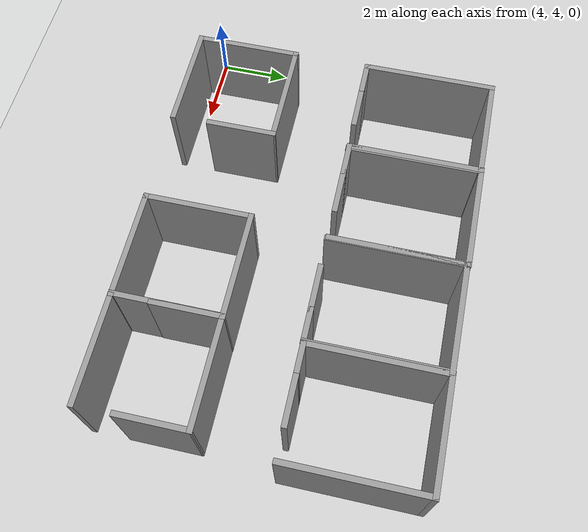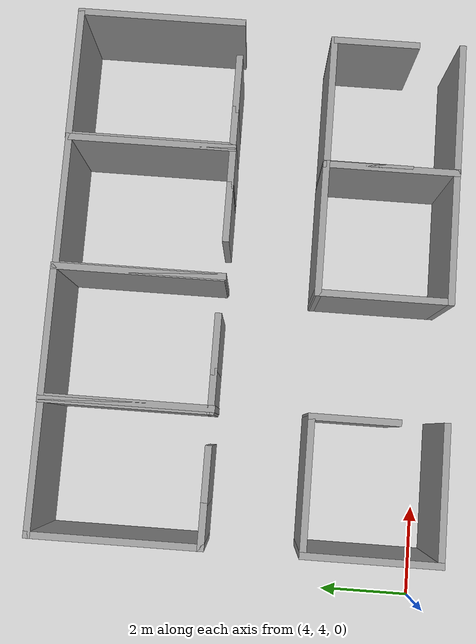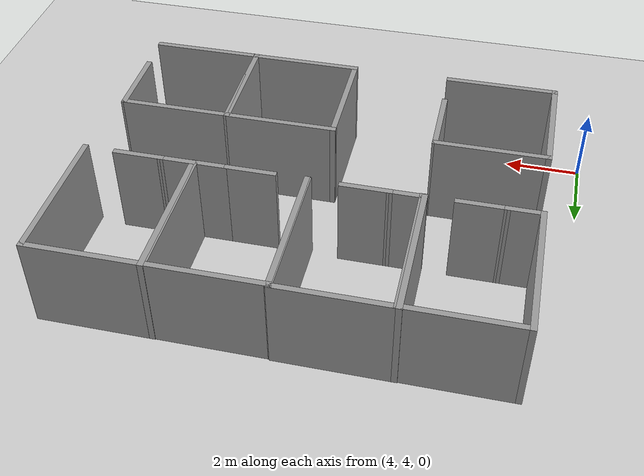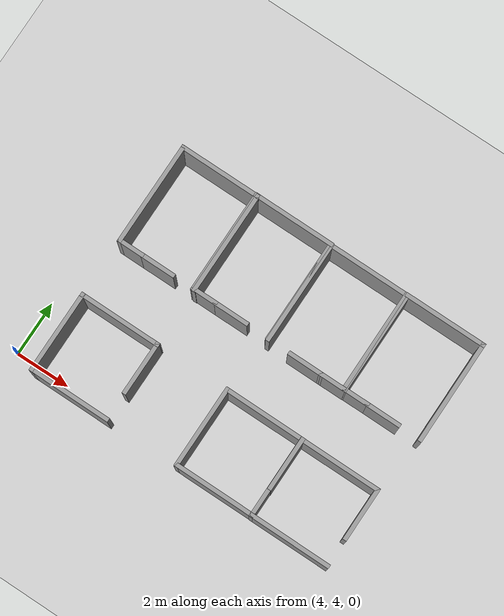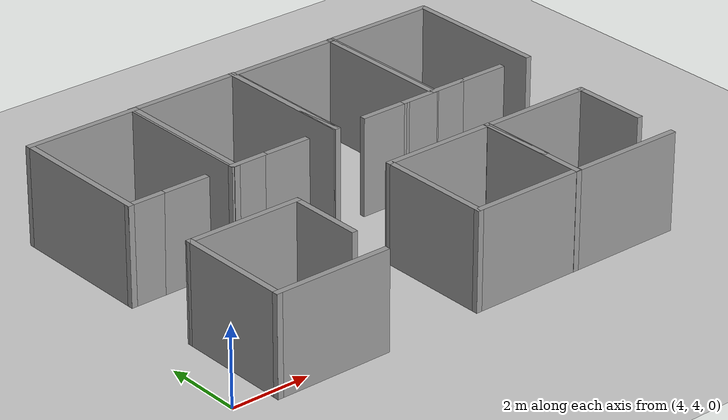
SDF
<sdf version="1.6">
 <world name="default">
  <model name="ground_plane">
   <static>1</static>
   <link name="link">
    <collision name="collision">
     <geometry><plane><normal>0 0 1</normal><size>100 100</size></plane></geometry>
     <surface><friction><ode><mu>100</mu><mu2>50</mu2></ode></friction></surface>
    </collision>
    <visual name="visual">
     <cast_shadows>0</cast_shadows>
     <geometry><plane><normal>0 0 1</normal><size>100 100</size></plane></geometry>
     <material>
      <script><uri>file://media/materials/scripts/gazebo.material</uri><name>Gazebo/Grey</name></script>
     </material>
    </visual>
   </link>
  </model>
  <model name="313-325_3">
   <link name="Wall_16">
    <pose>-1.44915 7.1e-05 0 0 0 -1.57088</pose>
    <visual name="Wall_16_Visual">
     <pose>0 0 1.25 0 -0 0</pose>
     <geometry><box><size>3.81 0.15 2.5</size></box></geometry>
     <material>
      <script><uri>file://media/materials/scripts/gazebo.material</uri><name>Gazebo/Grey</name></script>
      <ambient>1 1 1 1</ambient>
      <shader type="pixel"/>
     </material>
     <meta><layer>0</layer></meta>
    </visual>
    <collision name="Wall_16_Collision">
     <pose>0 0 1.25 0 -0 0</pose>
     <geometry><box><size>3.81 0.15 2.5</size></box></geometry>
     <surface>
      <friction>
       <ode><mu>1</mu><mu2>1</mu2><fdir1>0 0 0</fdir1><slip1>0</slip1><slip2>0</slip2></ode>
       <torsional>
        <coefficient>1</coefficient>
        <patch_radius>0</patch_radius>
        <surface_radius>0</surface_radius>
        <use_patch_radius>1</use_patch_radius>
        <ode><slip>0</slip></ode>
       </torsional>
      </friction>
      <bounce><restitution_coefficient>0</restitution_coefficient><threshold>1e+06</threshold></bounce>
      <contact>
       <collide_without_contact>0</collide_without_contact>
       <collide_without_contact_bitmask>1</collide_without_contact_bitmask>
       <collide_bitmask>1</collide_bitmask>
       <ode>
        <soft_cfm>0</soft_cfm>
        <soft_erp>0.2</soft_erp>
        <kp>1e+13</kp>
        <kd>1</kd>
        <max_vel>0.01</max_vel>
        <min_depth>0</min_depth>
       </ode>
       <bullet>
        <split_impulse>1</split_impulse>
        <split_impulse_penetration_threshold>-0.01</split_impulse_penetration_threshold>
        <soft_cfm>0</soft_cfm>
        <soft_erp>0.2</soft_erp>
        <kp>1e+13</kp>
        <kd>1</kd>
       </bullet>
      </contact>
     </surface>
    </collision>
   </link>
   <link name="Wall_18">
    <pose>1.449 -6.1e-05 0 0 -0 1.5708</pose>
    <visual name="Wall_18_Visual">
     <pose>0 0 1.25 0 -0 0</pose>
     <geometry><box><size>3.80974 0.15 2.5</size></box></geometry>
     <material>
      <script><uri>file://media/materials/scripts/gazebo.material</uri><name>Gazebo/Grey</name></script>
      <ambient>1 1 1 1</ambient>
      <shader type="pixel"/>
     </material>
     <meta><layer>0</layer></meta>
    </visual>
    <collision name="Wall_18_Collision">
     <pose>0 0 1.25 0 -0 0</pose>
     <geometry><box><size>3.80974 0.15 2.5</size></box></geometry>
     <surface>
      <friction>
       <ode><mu>1</mu><mu2>1</mu2><fdir1>0 0 0</fdir1><slip1>0</slip1><slip2>0</slip2></ode>
       <torsional>
        <coefficient>1</coefficient>
        <patch_radius>0</patch_radius>
        <surface_radius>0</surface_radius>
        <use_patch_radius>1</use_patch_radius>
        <ode><slip>0</slip></ode>
       </torsional>
      </friction>
      <bounce><restitution_coefficient>0</restitution_coefficient><threshold>1e+06</threshold></bounce>
      <contact>
       <collide_without_contact>0</collide_without_contact>
       <collide_without_contact_bitmask>1</collide_without_contact_bitmask>
       <collide_bitmask>1</collide_bitmask>
       <ode>
        <soft_cfm>0</soft_cfm>
        <soft_erp>0.2</soft_erp>
        <kp>1e+13</kp>
        <kd>1</kd>
        <max_vel>0.01</max_vel>
        <min_depth>0</min_depth>
       </ode>
       <bullet>
        <split_impulse>1</split_impulse>
        <split_impulse_penetration_threshold>-0.01</split_impulse_penetration_threshold>
        <soft_cfm>0</soft_cfm>
        <soft_erp>0.2</soft_erp>
        <kp>1e+13</kp>
        <kd>1</kd>
       </bullet>
      </contact>
     </surface>
    </collision>
   </link>
   <link name="Wall_19">
    <pose>1e-06 1.82994 0 0 -0 3.14159</pose>
    <visual name="Wall_19_Visual">
     <pose>0 0 1.25 0 -0 0</pose>
     <geometry><box><size>3.04862 0.15 2.5</size></box></geometry>
     <material>
      <script><uri>file://media/materials/scripts/gazebo.material</uri><name>Gazebo/Grey</name></script>
      <ambient>1 1 1 1</ambient>
      <shader type="pixel"/>
     </material>
     <meta><layer>0</layer></meta>
    </visual>
    <collision name="Wall_19_Collision">
     <pose>0 0 1.25 0 -0 0</pose>
     <geometry><box><size>3.04862 0.15 2.5</size></box></geometry>
     <surface>
      <friction>
       <ode><mu>1</mu><mu2>1</mu2><fdir1>0 0 0</fdir1><slip1>0</slip1><slip2>0</slip2></ode>
       <torsional>
        <coefficient>1</coefficient>
        <patch_radius>0</patch_radius>
        <surface_radius>0</surface_radius>
        <use_patch_radius>1</use_patch_radius>
        <ode><slip>0</slip></ode>
       </torsional>
      </friction>
      <bounce><restitution_coefficient>0</restitution_coefficient><threshold>1e+06</threshold></bounce>
      <contact>
       <collide_without_contact>0</collide_without_contact>
       <collide_without_contact_bitmask>1</collide_without_contact_bitmask>
       <collide_bitmask>1</collide_bitmask>
       <ode>
        <soft_cfm>0</soft_cfm>
        <soft_erp>0.2</soft_erp>
        <kp>1e+13</kp>
        <kd>1</kd>
        <max_vel>0.01</max_vel>
        <min_depth>0</min_depth>
       </ode>
       <bullet>
        <split_impulse>1</split_impulse>
        <split_impulse_penetration_threshold>-0.01</split_impulse_penetration_threshold>
        <soft_cfm>0</soft_cfm>
        <soft_erp>0.2</soft_erp>
        <kp>1e+13</kp>
        <kd>1</kd>
       </bullet>
      </contact>
     </surface>
    </collision>
   </link>
   <link name="Wall_21">
    <pose>-1.02431 -1.8298 0 0 -0 0</pose>
    <visual name="Wall_21_Visual">
     <pose>0 0 1.25 0 -0 0</pose>
     <geometry><box><size>1 0.15 2.5</size></box></geometry>
     <material>
      <script><uri>file://media/materials/scripts/gazebo.material</uri><name>Gazebo/Grey</name></script>
      <ambient>1 1 1 1</ambient>
      <shader type="pixel"/>
     </material>
     <meta><layer>0</layer></meta>
    </visual>
    <collision name="Wall_21_Collision">
     <pose>0 0 1.25 0 -0 0</pose>
     <geometry><box><size>1 0.15 2.5</size></box></geometry>
     <surface>
      <friction>
       <ode><mu>1</mu><mu2>1</mu2><fdir1>0 0 0</fdir1><slip1>0</slip1><slip2>0</slip2></ode>
       <torsional>
        <coefficient>1</coefficient>
        <patch_radius>0</patch_radius>
        <surface_radius>0</surface_radius>
        <use_patch_radius>1</use_patch_radius>
        <ode><slip>0</slip></ode>
       </torsional>
      </friction>
      <bounce><restitution_coefficient>0</restitution_coefficient><threshold>1e+06</threshold></bounce>
      <contact>
       <collide_without_contact>0</collide_without_contact>
       <collide_without_contact_bitmask>1</collide_without_contact_bitmask>
       <collide_bitmask>1</collide_bitmask>
       <ode>
        <soft_cfm>0</soft_cfm>
        <soft_erp>0.2</soft_erp>
        <kp>1e+13</kp>
        <kd>1</kd>
        <max_vel>0.01</max_vel>
        <min_depth>0</min_depth>
       </ode>
       <bullet>
        <split_impulse>1</split_impulse>
        <split_impulse_penetration_threshold>-0.01</split_impulse_penetration_threshold>
        <soft_cfm>0</soft_cfm>
        <soft_erp>0.2</soft_erp>
        <kp>1e+13</kp>
        <kd>1</kd>
       </bullet>
      </contact>
     </surface>
    </collision>
   </link>
   <link name="Wall_22">
    <pose>-0.000152 -1.82993 0 0 0 -0.00022</pose>
    <visual name="Wall_22_Visual">
     <pose>0 0 1.25 0 -0 0</pose>
     <geometry><box><size>1.34831 0.15 2.5</size></box></geometry>
     <material>
      <script><uri>file://media/materials/scripts/gazebo.material</uri><name>Gazebo/Grey</name></script>
      <ambient>1 1 1 1</ambient>
      <shader type="pixel"/>
     </material>
     <meta><layer>0</layer></meta>
    </visual>
    <collision name="Wall_22_Collision">
     <pose>0 0 1.25 0 -0 0</pose>
     <geometry><box><size>1.34831 0.15 2.5</size></box></geometry>
     <surface>
      <friction>
       <ode><mu>1</mu><mu2>1</mu2><fdir1>0 0 0</fdir1><slip1>0</slip1><slip2>0</slip2></ode>
       <torsional>
        <coefficient>1</coefficient>
        <patch_radius>0</patch_radius>
        <surface_radius>0</surface_radius>
        <use_patch_radius>1</use_patch_radius>
        <ode><slip>0</slip></ode>
       </torsional>
      </friction>
      <bounce><restitution_coefficient>0</restitution_coefficient><threshold>1e+06</threshold></bounce>
      <contact>
       <collide_without_contact>0</collide_without_contact>
       <collide_without_contact_bitmask>1</collide_without_contact_bitmask>
       <collide_bitmask>1</collide_bitmask>
       <ode>
        <soft_cfm>0</soft_cfm>
        <soft_erp>0.2</soft_erp>
        <kp>1e+13</kp>
        <kd>1</kd>
        <max_vel>0.01</max_vel>
        <min_depth>0</min_depth>
       </ode>
       <bullet>
        <split_impulse>1</split_impulse>
        <split_impulse_penetration_threshold>-0.01</split_impulse_penetration_threshold>
        <soft_cfm>0</soft_cfm>
        <soft_erp>0.2</soft_erp>
        <kp>1e+13</kp>
        <kd>1</kd>
       </bullet>
      </contact>
     </surface>
    </collision>
   </link>
   <static>1</static>
   <pose>15.1738 10.5914 0 0 -0 0</pose>
  </model>
  <model name="313-325_4">
   <link name="Wall_16">
    <pose>-1.44915 7.1e-05 0 0 0 -1.57088</pose>
    <visual name="Wall_16_Visual">
     <pose>0 0 1.25 0 -0 0</pose>
     <geometry><box><size>3.81 0.15 2.5</size></box></geometry>
     <material>
      <script><uri>file://media/materials/scripts/gazebo.material</uri><name>Gazebo/Grey</name></script>
      <ambient>1 1 1 1</ambient>
      <shader type="pixel"/>
     </material>
     <meta><layer>0</layer></meta>
    </visual>
    <collision name="Wall_16_Collision">
     <pose>0 0 1.25 0 -0 0</pose>
     <geometry><box><size>3.81 0.15 2.5</size></box></geometry>
     <surface>
      <friction>
       <ode><mu>1</mu><mu2>1</mu2><fdir1>0 0 0</fdir1><slip1>0</slip1><slip2>0</slip2></ode>
       <torsional>
        <coefficient>1</coefficient>
        <patch_radius>0</patch_radius>
        <surface_radius>0</surface_radius>
        <use_patch_radius>1</use_patch_radius>
        <ode><slip>0</slip></ode>
       </torsional>
      </friction>
      <bounce><restitution_coefficient>0</restitution_coefficient><threshold>1e+06</threshold></bounce>
      <contact>
       <collide_without_contact>0</collide_without_contact>
       <collide_without_contact_bitmask>1</collide_without_contact_bitmask>
       <collide_bitmask>1</collide_bitmask>
       <ode>
        <soft_cfm>0</soft_cfm>
        <soft_erp>0.2</soft_erp>
        <kp>1e+13</kp>
        <kd>1</kd>
        <max_vel>0.01</max_vel>
        <min_depth>0</min_depth>
       </ode>
       <bullet>
        <split_impulse>1</split_impulse>
        <split_impulse_penetration_threshold>-0.01</split_impulse_penetration_threshold>
        <soft_cfm>0</soft_cfm>
        <soft_erp>0.2</soft_erp>
        <kp>1e+13</kp>
        <kd>1</kd>
       </bullet>
      </contact>
     </surface>
    </collision>
   </link>
   <link name="Wall_18">
    <pose>1.449 -6.1e-05 0 0 -0 1.5708</pose>
    <visual name="Wall_18_Visual">
     <pose>0 0 1.25 0 -0 0</pose>
     <geometry><box><size>3.80974 0.15 2.5</size></box></geometry>
     <material>
      <script><uri>file://media/materials/scripts/gazebo.material</uri><name>Gazebo/Grey</name></script>
      <ambient>1 1 1 1</ambient>
      <shader type="pixel"/>
     </material>
     <meta><layer>0</layer></meta>
    </visual>
    <collision name="Wall_18_Collision">
     <pose>0 0 1.25 0 -0 0</pose>
     <geometry><box><size>3.80974 0.15 2.5</size></box></geometry>
     <surface>
      <friction>
       <ode><mu>1</mu><mu2>1</mu2><fdir1>0 0 0</fdir1><slip1>0</slip1><slip2>0</slip2></ode>
       <torsional>
        <coefficient>1</coefficient>
        <patch_radius>0</patch_radius>
        <surface_radius>0</surface_radius>
        <use_patch_radius>1</use_patch_radius>
        <ode><slip>0</slip></ode>
       </torsional>
      </friction>
      <bounce><restitution_coefficient>0</restitution_coefficient><threshold>1e+06</threshold></bounce>
      <contact>
       <collide_without_contact>0</collide_without_contact>
       <collide_without_contact_bitmask>1</collide_without_contact_bitmask>
       <collide_bitmask>1</collide_bitmask>
       <ode>
        <soft_cfm>0</soft_cfm>
        <soft_erp>0.2</soft_erp>
        <kp>1e+13</kp>
        <kd>1</kd>
        <max_vel>0.01</max_vel>
        <min_depth>0</min_depth>
       </ode>
       <bullet>
        <split_impulse>1</split_impulse>
        <split_impulse_penetration_threshold>-0.01</split_impulse_penetration_threshold>
        <soft_cfm>0</soft_cfm>
        <soft_erp>0.2</soft_erp>
        <kp>1e+13</kp>
        <kd>1</kd>
       </bullet>
      </contact>
     </surface>
    </collision>
   </link>
   <link name="Wall_19">
    <pose>1e-06 1.82994 0 0 -0 3.14159</pose>
    <visual name="Wall_19_Visual">
     <pose>0 0 1.25 0 -0 0</pose>
     <geometry><box><size>3.04862 0.15 2.5</size></box></geometry>
     <material>
      <script><uri>file://media/materials/scripts/gazebo.material</uri><name>Gazebo/Grey</name></script>
      <ambient>1 1 1 1</ambient>
      <shader type="pixel"/>
     </material>
     <meta><layer>0</layer></meta>
    </visual>
    <collision name="Wall_19_Collision">
     <pose>0 0 1.25 0 -0 0</pose>
     <geometry><box><size>3.04862 0.15 2.5</size></box></geometry>
     <surface>
      <friction>
       <ode><mu>1</mu><mu2>1</mu2><fdir1>0 0 0</fdir1><slip1>0</slip1><slip2>0</slip2></ode>
       <torsional>
        <coefficient>1</coefficient>
        <patch_radius>0</patch_radius>
        <surface_radius>0</surface_radius>
        <use_patch_radius>1</use_patch_radius>
        <ode><slip>0</slip></ode>
       </torsional>
      </friction>
      <bounce><restitution_coefficient>0</restitution_coefficient><threshold>1e+06</threshold></bounce>
      <contact>
       <collide_without_contact>0</collide_without_contact>
       <collide_without_contact_bitmask>1</collide_without_contact_bitmask>
       <collide_bitmask>1</collide_bitmask>
       <ode>
        <soft_cfm>0</soft_cfm>
        <soft_erp>0.2</soft_erp>
        <kp>1e+13</kp>
        <kd>1</kd>
        <max_vel>0.01</max_vel>
        <min_depth>0</min_depth>
       </ode>
       <bullet>
        <split_impulse>1</split_impulse>
        <split_impulse_penetration_threshold>-0.01</split_impulse_penetration_threshold>
        <soft_cfm>0</soft_cfm>
        <soft_erp>0.2</soft_erp>
        <kp>1e+13</kp>
        <kd>1</kd>
       </bullet>
      </contact>
     </surface>
    </collision>
   </link>
   <link name="Wall_22">
    <pose>-0.000152 -1.82993 0 0 0 -0.00022</pose>
    <visual name="Wall_22_Visual">
     <pose>0 0 1.25 0 -0 0</pose>
     <geometry><box><size>1.34831 0.15 2.5</size></box></geometry>
     <material>
      <script><uri>file://media/materials/scripts/gazebo.material</uri><name>Gazebo/Grey</name></script>
      <ambient>1 1 1 1</ambient>
      <shader type="pixel"/>
     </material>
     <meta><layer>0</layer></meta>
    </visual>
    <collision name="Wall_22_Collision">
     <pose>0 0 1.25 0 -0 0</pose>
     <geometry><box><size>1.34831 0.15 2.5</size></box></geometry>
     <surface>
      <friction>
       <ode><mu>1</mu><mu2>1</mu2><fdir1>0 0 0</fdir1><slip1>0</slip1><slip2>0</slip2></ode>
       <torsional>
        <coefficient>1</coefficient>
        <patch_radius>0</patch_radius>
        <surface_radius>0</surface_radius>
        <use_patch_radius>1</use_patch_radius>
        <ode><slip>0</slip></ode>
       </torsional>
      </friction>
      <bounce><restitution_coefficient>0</restitution_coefficient><threshold>1e+06</threshold></bounce>
      <contact>
       <collide_without_contact>0</collide_without_contact>
       <collide_without_contact_bitmask>1</collide_without_contact_bitmask>
       <collide_bitmask>1</collide_bitmask>
       <ode>
        <soft_cfm>0</soft_cfm>
        <soft_erp>0.2</soft_erp>
        <kp>1e+13</kp>
        <kd>1</kd>
        <max_vel>0.01</max_vel>
        <min_depth>0</min_depth>
       </ode>
       <bullet>
        <split_impulse>1</split_impulse>
        <split_impulse_penetration_threshold>-0.01</split_impulse_penetration_threshold>
        <soft_cfm>0</soft_cfm>
        <soft_erp>0.2</soft_erp>
        <kp>1e+13</kp>
        <kd>1</kd>
       </bullet>
      </contact>
     </surface>
    </collision>
   </link>
   <link name="Wall_23">
    <pose>1.024 -1.83006 0 0 -0 0</pose>
    <visual name="Wall_23_Visual">
     <pose>0 0 1.25 0 -0 0</pose>
     <geometry><box><size>1 0.15 2.5</size></box></geometry>
     <material>
      <script><uri>file://media/materials/scripts/gazebo.material</uri><name>Gazebo/Grey</name></script>
      <ambient>1 1 1 1</ambient>
      <shader type="pixel"/>
     </material>
     <meta><layer>0</layer></meta>
    </visual>
    <collision name="Wall_23_Collision">
     <pose>0 0 1.25 0 -0 0</pose>
     <geometry><box><size>1 0.15 2.5</size></box></geometry>
     <surface>
      <friction>
       <ode><mu>1</mu><mu2>1</mu2><fdir1>0 0 0</fdir1><slip1>0</slip1><slip2>0</slip2></ode>
       <torsional>
        <coefficient>1</coefficient>
        <patch_radius>0</patch_radius>
        <surface_radius>0</surface_radius>
        <use_patch_radius>1</use_patch_radius>
        <ode><slip>0</slip></ode>
       </torsional>
      </friction>
      <bounce><restitution_coefficient>0</restitution_coefficient><threshold>1e+06</threshold></bounce>
      <contact>
       <collide_without_contact>0</collide_without_contact>
       <collide_without_contact_bitmask>1</collide_without_contact_bitmask>
       <collide_bitmask>1</collide_bitmask>
       <ode>
        <soft_cfm>0</soft_cfm>
        <soft_erp>0.2</soft_erp>
        <kp>1e+13</kp>
        <kd>1</kd>
        <max_vel>0.01</max_vel>
        <min_depth>0</min_depth>
       </ode>
       <bullet>
        <split_impulse>1</split_impulse>
        <split_impulse_penetration_threshold>-0.01</split_impulse_penetration_threshold>
        <soft_cfm>0</soft_cfm>
        <soft_erp>0.2</soft_erp>
        <kp>1e+13</kp>
        <kd>1</kd>
       </bullet>
      </contact>
     </surface>
    </collision>
   </link>
   <static>1</static>
   <pose>12.2303 10.5808 0 0 -0 0</pose>
  </model>
  <model name="313-325_5">
   <link name="Wall_16">
    <pose>-1.44915 7.1e-05 0 0 0 -1.57088</pose>
    <visual name="Wall_16_Visual">
     <pose>0 0 1.25 0 -0 0</pose>
     <geometry><box><size>3.81 0.15 2.5</size></box></geometry>
     <material>
      <script><uri>file://media/materials/scripts/gazebo.material</uri><name>Gazebo/Grey</name></script>
      <ambient>1 1 1 1</ambient>
      <shader type="pixel"/>
     </material>
     <meta><layer>0</layer></meta>
    </visual>
    <collision name="Wall_16_Collision">
     <pose>0 0 1.25 0 -0 0</pose>
     <geometry><box><size>3.81 0.15 2.5</size></box></geometry>
     <surface>
      <friction>
       <ode><mu>1</mu><mu2>1</mu2><fdir1>0 0 0</fdir1><slip1>0</slip1><slip2>0</slip2></ode>
       <torsional>
        <coefficient>1</coefficient>
        <patch_radius>0</patch_radius>
        <surface_radius>0</surface_radius>
        <use_patch_radius>1</use_patch_radius>
        <ode><slip>0</slip></ode>
       </torsional>
      </friction>
      <bounce><restitution_coefficient>0</restitution_coefficient><threshold>1e+06</threshold></bounce>
      <contact>
       <collide_without_contact>0</collide_without_contact>
       <collide_without_contact_bitmask>1</collide_without_contact_bitmask>
       <collide_bitmask>1</collide_bitmask>
       <ode>
        <soft_cfm>0</soft_cfm>
        <soft_erp>0.2</soft_erp>
        <kp>1e+13</kp>
        <kd>1</kd>
        <max_vel>0.01</max_vel>
        <min_depth>0</min_depth>
       </ode>
       <bullet>
        <split_impulse>1</split_impulse>
        <split_impulse_penetration_threshold>-0.01</split_impulse_penetration_threshold>
        <soft_cfm>0</soft_cfm>
        <soft_erp>0.2</soft_erp>
        <kp>1e+13</kp>
        <kd>1</kd>
       </bullet>
      </contact>
     </surface>
    </collision>
   </link>
   <link name="Wall_18">
    <pose>1.449 -6.1e-05 0 0 -0 1.5708</pose>
    <visual name="Wall_18_Visual">
     <pose>0 0 1.25 0 -0 0</pose>
     <geometry><box><size>3.80974 0.15 2.5</size></box></geometry>
     <material>
      <script><uri>file://media/materials/scripts/gazebo.material</uri><name>Gazebo/Grey</name></script>
      <ambient>1 1 1 1</ambient>
      <shader type="pixel"/>
     </material>
     <meta><layer>0</layer></meta>
    </visual>
    <collision name="Wall_18_Collision">
     <pose>0 0 1.25 0 -0 0</pose>
     <geometry><box><size>3.80974 0.15 2.5</size></box></geometry>
     <surface>
      <friction>
       <ode><mu>1</mu><mu2>1</mu2><fdir1>0 0 0</fdir1><slip1>0</slip1><slip2>0</slip2></ode>
       <torsional>
        <coefficient>1</coefficient>
        <patch_radius>0</patch_radius>
        <surface_radius>0</surface_radius>
        <use_patch_radius>1</use_patch_radius>
        <ode><slip>0</slip></ode>
       </torsional>
      </friction>
      <bounce><restitution_coefficient>0</restitution_coefficient><threshold>1e+06</threshold></bounce>
      <contact>
       <collide_without_contact>0</collide_without_contact>
       <collide_without_contact_bitmask>1</collide_without_contact_bitmask>
       <collide_bitmask>1</collide_bitmask>
       <ode>
        <soft_cfm>0</soft_cfm>
        <soft_erp>0.2</soft_erp>
        <kp>1e+13</kp>
        <kd>1</kd>
        <max_vel>0.01</max_vel>
        <min_depth>0</min_depth>
       </ode>
       <bullet>
        <split_impulse>1</split_impulse>
        <split_impulse_penetration_threshold>-0.01</split_impulse_penetration_threshold>
        <soft_cfm>0</soft_cfm>
        <soft_erp>0.2</soft_erp>
        <kp>1e+13</kp>
        <kd>1</kd>
       </bullet>
      </contact>
     </surface>
    </collision>
   </link>
   <link name="Wall_19">
    <pose>1e-06 1.82994 0 0 -0 3.14159</pose>
    <visual name="Wall_19_Visual">
     <pose>0 0 1.25 0 -0 0</pose>
     <geometry><box><size>3.04862 0.15 2.5</size></box></geometry>
     <material>
      <script><uri>file://media/materials/scripts/gazebo.material</uri><name>Gazebo/Grey</name></script>
      <ambient>1 1 1 1</ambient>
      <shader type="pixel"/>
     </material>
     <meta><layer>0</layer></meta>
    </visual>
    <collision name="Wall_19_Collision">
     <pose>0 0 1.25 0 -0 0</pose>
     <geometry><box><size>3.04862 0.15 2.5</size></box></geometry>
     <surface>
      <friction>
       <ode><mu>1</mu><mu2>1</mu2><fdir1>0 0 0</fdir1><slip1>0</slip1><slip2>0</slip2></ode>
       <torsional>
        <coefficient>1</coefficient>
        <patch_radius>0</patch_radius>
        <surface_radius>0</surface_radius>
        <use_patch_radius>1</use_patch_radius>
        <ode><slip>0</slip></ode>
       </torsional>
      </friction>
      <bounce><restitution_coefficient>0</restitution_coefficient><threshold>1e+06</threshold></bounce>
      <contact>
       <collide_without_contact>0</collide_without_contact>
       <collide_without_contact_bitmask>1</collide_without_contact_bitmask>
       <collide_bitmask>1</collide_bitmask>
       <ode>
        <soft_cfm>0</soft_cfm>
        <soft_erp>0.2</soft_erp>
        <kp>1e+13</kp>
        <kd>1</kd>
        <max_vel>0.01</max_vel>
        <min_depth>0</min_depth>
       </ode>
       <bullet>
        <split_impulse>1</split_impulse>
        <split_impulse_penetration_threshold>-0.01</split_impulse_penetration_threshold>
        <soft_cfm>0</soft_cfm>
        <soft_erp>0.2</soft_erp>
        <kp>1e+13</kp>
        <kd>1</kd>
       </bullet>
      </contact>
     </surface>
    </collision>
   </link>
   <link name="Wall_21">
    <pose>-1.02431 -1.8298 0 0 -0 0</pose>
    <visual name="Wall_21_Visual">
     <pose>0 0 1.25 0 -0 0</pose>
     <geometry><box><size>1 0.15 2.5</size></box></geometry>
     <material>
      <script><uri>file://media/materials/scripts/gazebo.material</uri><name>Gazebo/Grey</name></script>
      <ambient>1 1 1 1</ambient>
      <shader type="pixel"/>
     </material>
     <meta><layer>0</layer></meta>
    </visual>
    <collision name="Wall_21_Collision">
     <pose>0 0 1.25 0 -0 0</pose>
     <geometry><box><size>1 0.15 2.5</size></box></geometry>
     <surface>
      <friction>
       <ode><mu>1</mu><mu2>1</mu2><fdir1>0 0 0</fdir1><slip1>0</slip1><slip2>0</slip2></ode>
       <torsional>
        <coefficient>1</coefficient>
        <patch_radius>0</patch_radius>
        <surface_radius>0</surface_radius>
        <use_patch_radius>1</use_patch_radius>
        <ode><slip>0</slip></ode>
       </torsional>
      </friction>
      <bounce><restitution_coefficient>0</restitution_coefficient><threshold>1e+06</threshold></bounce>
      <contact>
       <collide_without_contact>0</collide_without_contact>
       <collide_without_contact_bitmask>1</collide_without_contact_bitmask>
       <collide_bitmask>1</collide_bitmask>
       <ode>
        <soft_cfm>0</soft_cfm>
        <soft_erp>0.2</soft_erp>
        <kp>1e+13</kp>
        <kd>1</kd>
        <max_vel>0.01</max_vel>
        <min_depth>0</min_depth>
       </ode>
       <bullet>
        <split_impulse>1</split_impulse>
        <split_impulse_penetration_threshold>-0.01</split_impulse_penetration_threshold>
        <soft_cfm>0</soft_cfm>
        <soft_erp>0.2</soft_erp>
        <kp>1e+13</kp>
        <kd>1</kd>
       </bullet>
      </contact>
     </surface>
    </collision>
   </link>
   <link name="Wall_22">
    <pose>-0.000152 -1.82993 0 0 0 -0.00022</pose>
    <visual name="Wall_22_Visual">
     <pose>0 0 1.25 0 -0 0</pose>
     <geometry><box><size>1.34831 0.15 2.5</size></box></geometry>
     <material>
      <script><uri>file://media/materials/scripts/gazebo.material</uri><name>Gazebo/Grey</name></script>
      <ambient>1 1 1 1</ambient>
      <shader type="pixel"/>
     </material>
     <meta><layer>0</layer></meta>
    </visual>
    <collision name="Wall_22_Collision">
     <pose>0 0 1.25 0 -0 0</pose>
     <geometry><box><size>1.34831 0.15 2.5</size></box></geometry>
     <surface>
      <friction>
       <ode><mu>1</mu><mu2>1</mu2><fdir1>0 0 0</fdir1><slip1>0</slip1><slip2>0</slip2></ode>
       <torsional>
        <coefficient>1</coefficient>
        <patch_radius>0</patch_radius>
        <surface_radius>0</surface_radius>
        <use_patch_radius>1</use_patch_radius>
        <ode><slip>0</slip></ode>
       </torsional>
      </friction>
      <bounce><restitution_coefficient>0</restitution_coefficient><threshold>1e+06</threshold></bounce>
      <contact>
       <collide_without_contact>0</collide_without_contact>
       <collide_without_contact_bitmask>1</collide_without_contact_bitmask>
       <collide_bitmask>1</collide_bitmask>
       <ode>
        <soft_cfm>0</soft_cfm>
        <soft_erp>0.2</soft_erp>
        <kp>1e+13</kp>
        <kd>1</kd>
        <max_vel>0.01</max_vel>
        <min_depth>0</min_depth>
       </ode>
       <bullet>
        <split_impulse>1</split_impulse>
        <split_impulse_penetration_threshold>-0.01</split_impulse_penetration_threshold>
        <soft_cfm>0</soft_cfm>
        <soft_erp>0.2</soft_erp>
        <kp>1e+13</kp>
        <kd>1</kd>
       </bullet>
      </contact>
     </surface>
    </collision>
   </link>
   <static>1</static>
   <pose>9.30331 10.6097 0 0 -0 0</pose>
  </model>
  <model name="313-325_6">
   <link name="Wall_16">
    <pose>-1.44915 7.1e-05 0 0 0 -1.57088</pose>
    <visual name="Wall_16_Visual">
     <pose>0 0 1.25 0 -0 0</pose>
     <geometry><box><size>3.81 0.15 2.5</size></box></geometry>
     <material>
      <script><uri>file://media/materials/scripts/gazebo.material</uri><name>Gazebo/Grey</name></script>
      <ambient>1 1 1 1</ambient>
      <shader type="pixel"/>
     </material>
     <meta><layer>0</layer></meta>
    </visual>
    <collision name="Wall_16_Collision">
     <pose>0 0 1.25 0 -0 0</pose>
     <geometry><box><size>3.81 0.15 2.5</size></box></geometry>
     <surface>
      <friction>
       <ode><mu>1</mu><mu2>1</mu2><fdir1>0 0 0</fdir1><slip1>0</slip1><slip2>0</slip2></ode>
       <torsional>
        <coefficient>1</coefficient>
        <patch_radius>0</patch_radius>
        <surface_radius>0</surface_radius>
        <use_patch_radius>1</use_patch_radius>
        <ode><slip>0</slip></ode>
       </torsional>
      </friction>
      <bounce><restitution_coefficient>0</restitution_coefficient><threshold>1e+06</threshold></bounce>
      <contact>
       <collide_without_contact>0</collide_without_contact>
       <collide_without_contact_bitmask>1</collide_without_contact_bitmask>
       <collide_bitmask>1</collide_bitmask>
       <ode>
        <soft_cfm>0</soft_cfm>
        <soft_erp>0.2</soft_erp>
        <kp>1e+13</kp>
        <kd>1</kd>
        <max_vel>0.01</max_vel>
        <min_depth>0</min_depth>
       </ode>
       <bullet>
        <split_impulse>1</split_impulse>
        <split_impulse_penetration_threshold>-0.01</split_impulse_penetration_threshold>
        <soft_cfm>0</soft_cfm>
        <soft_erp>0.2</soft_erp>
        <kp>1e+13</kp>
        <kd>1</kd>
       </bullet>
      </contact>
     </surface>
    </collision>
   </link>
   <link name="Wall_18">
    <pose>1.449 -6.1e-05 0 0 -0 1.5708</pose>
    <visual name="Wall_18_Visual">
     <pose>0 0 1.25 0 -0 0</pose>
     <geometry><box><size>3.80974 0.15 2.5</size></box></geometry>
     <material>
      <script><uri>file://media/materials/scripts/gazebo.material</uri><name>Gazebo/Grey</name></script>
      <ambient>1 1 1 1</ambient>
      <shader type="pixel"/>
     </material>
     <meta><layer>0</layer></meta>
    </visual>
    <collision name="Wall_18_Collision">
     <pose>0 0 1.25 0 -0 0</pose>
     <geometry><box><size>3.80974 0.15 2.5</size></box></geometry>
     <surface>
      <friction>
       <ode><mu>1</mu><mu2>1</mu2><fdir1>0 0 0</fdir1><slip1>0</slip1><slip2>0</slip2></ode>
       <torsional>
        <coefficient>1</coefficient>
        <patch_radius>0</patch_radius>
        <surface_radius>0</surface_radius>
        <use_patch_radius>1</use_patch_radius>
        <ode><slip>0</slip></ode>
       </torsional>
      </friction>
      <bounce><restitution_coefficient>0</restitution_coefficient><threshold>1e+06</threshold></bounce>
      <contact>
       <collide_without_contact>0</collide_without_contact>
       <collide_without_contact_bitmask>1</collide_without_contact_bitmask>
       <collide_bitmask>1</collide_bitmask>
       <ode>
        <soft_cfm>0</soft_cfm>
        <soft_erp>0.2</soft_erp>
        <kp>1e+13</kp>
        <kd>1</kd>
        <max_vel>0.01</max_vel>
        <min_depth>0</min_depth>
       </ode>
       <bullet>
        <split_impulse>1</split_impulse>
        <split_impulse_penetration_threshold>-0.01</split_impulse_penetration_threshold>
        <soft_cfm>0</soft_cfm>
        <soft_erp>0.2</soft_erp>
        <kp>1e+13</kp>
        <kd>1</kd>
       </bullet>
      </contact>
     </surface>
    </collision>
   </link>
   <link name="Wall_19">
    <pose>1e-06 1.82994 0 0 -0 3.14159</pose>
    <visual name="Wall_19_Visual">
     <pose>0 0 1.25 0 -0 0</pose>
     <geometry><box><size>3.04862 0.15 2.5</size></box></geometry>
     <material>
      <script><uri>file://media/materials/scripts/gazebo.material</uri><name>Gazebo/Grey</name></script>
      <ambient>1 1 1 1</ambient>
      <shader type="pixel"/>
     </material>
     <meta><layer>0</layer></meta>
    </visual>
    <collision name="Wall_19_Collision">
     <pose>0 0 1.25 0 -0 0</pose>
     <geometry><box><size>3.04862 0.15 2.5</size></box></geometry>
     <surface>
      <friction>
       <ode><mu>1</mu><mu2>1</mu2><fdir1>0 0 0</fdir1><slip1>0</slip1><slip2>0</slip2></ode>
       <torsional>
        <coefficient>1</coefficient>
        <patch_radius>0</patch_radius>
        <surface_radius>0</surface_radius>
        <use_patch_radius>1</use_patch_radius>
        <ode><slip>0</slip></ode>
       </torsional>
      </friction>
      <bounce><restitution_coefficient>0</restitution_coefficient><threshold>1e+06</threshold></bounce>
      <contact>
       <collide_without_contact>0</collide_without_contact>
       <collide_without_contact_bitmask>1</collide_without_contact_bitmask>
       <collide_bitmask>1</collide_bitmask>
       <ode>
        <soft_cfm>0</soft_cfm>
        <soft_erp>0.2</soft_erp>
        <kp>1e+13</kp>
        <kd>1</kd>
        <max_vel>0.01</max_vel>
        <min_depth>0</min_depth>
       </ode>
       <bullet>
        <split_impulse>1</split_impulse>
        <split_impulse_penetration_threshold>-0.01</split_impulse_penetration_threshold>
        <soft_cfm>0</soft_cfm>
        <soft_erp>0.2</soft_erp>
        <kp>1e+13</kp>
        <kd>1</kd>
       </bullet>
      </contact>
     </surface>
    </collision>
   </link>
   <link name="Wall_21">
    <pose>-1.02431 -1.8298 0 0 -0 0</pose>
    <visual name="Wall_21_Visual">
     <pose>0 0 1.25 0 -0 0</pose>
     <geometry><box><size>1 0.15 2.5</size></box></geometry>
     <material>
      <script><uri>file://media/materials/scripts/gazebo.material</uri><name>Gazebo/Grey</name></script>
      <ambient>1 1 1 1</ambient>
      <shader type="pixel"/>
     </material>
     <meta><layer>0</layer></meta>
    </visual>
    <collision name="Wall_21_Collision">
     <pose>0 0 1.25 0 -0 0</pose>
     <geometry><box><size>1 0.15 2.5</size></box></geometry>
     <surface>
      <friction>
       <ode><mu>1</mu><mu2>1</mu2><fdir1>0 0 0</fdir1><slip1>0</slip1><slip2>0</slip2></ode>
       <torsional>
        <coefficient>1</coefficient>
        <patch_radius>0</patch_radius>
        <surface_radius>0</surface_radius>
        <use_patch_radius>1</use_patch_radius>
        <ode><slip>0</slip></ode>
       </torsional>
      </friction>
      <bounce><restitution_coefficient>0</restitution_coefficient><threshold>1e+06</threshold></bounce>
      <contact>
       <collide_without_contact>0</collide_without_contact>
       <collide_without_contact_bitmask>1</collide_without_contact_bitmask>
       <collide_bitmask>1</collide_bitmask>
       <ode>
        <soft_cfm>0</soft_cfm>
        <soft_erp>0.2</soft_erp>
        <kp>1e+13</kp>
        <kd>1</kd>
        <max_vel>0.01</max_vel>
        <min_depth>0</min_depth>
       </ode>
       <bullet>
        <split_impulse>1</split_impulse>
        <split_impulse_penetration_threshold>-0.01</split_impulse_penetration_threshold>
        <soft_cfm>0</soft_cfm>
        <soft_erp>0.2</soft_erp>
        <kp>1e+13</kp>
        <kd>1</kd>
       </bullet>
      </contact>
     </surface>
    </collision>
   </link>
   <link name="Wall_22">
    <pose>-0.000152 -1.82993 0 0 0 -0.00022</pose>
    <visual name="Wall_22_Visual">
     <pose>0 0 1.25 0 -0 0</pose>
     <geometry><box><size>1.34831 0.15 2.5</size></box></geometry>
     <material>
      <script><uri>file://media/materials/scripts/gazebo.material</uri><name>Gazebo/Grey</name></script>
      <ambient>1 1 1 1</ambient>
      <shader type="pixel"/>
     </material>
     <meta><layer>0</layer></meta>
    </visual>
    <collision name="Wall_22_Collision">
     <pose>0 0 1.25 0 -0 0</pose>
     <geometry><box><size>1.34831 0.15 2.5</size></box></geometry>
     <surface>
      <friction>
       <ode><mu>1</mu><mu2>1</mu2><fdir1>0 0 0</fdir1><slip1>0</slip1><slip2>0</slip2></ode>
       <torsional>
        <coefficient>1</coefficient>
        <patch_radius>0</patch_radius>
        <surface_radius>0</surface_radius>
        <use_patch_radius>1</use_patch_radius>
        <ode><slip>0</slip></ode>
       </torsional>
      </friction>
      <bounce><restitution_coefficient>0</restitution_coefficient><threshold>1e+06</threshold></bounce>
      <contact>
       <collide_without_contact>0</collide_without_contact>
       <collide_without_contact_bitmask>1</collide_without_contact_bitmask>
       <collide_bitmask>1</collide_bitmask>
       <ode>
        <soft_cfm>0</soft_cfm>
        <soft_erp>0.2</soft_erp>
        <kp>1e+13</kp>
        <kd>1</kd>
        <max_vel>0.01</max_vel>
        <min_depth>0</min_depth>
       </ode>
       <bullet>
        <split_impulse>1</split_impulse>
        <split_impulse_penetration_threshold>-0.01</split_impulse_penetration_threshold>
        <soft_cfm>0</soft_cfm>
        <soft_erp>0.2</soft_erp>
        <kp>1e+13</kp>
        <kd>1</kd>
       </bullet>
      </contact>
     </surface>
    </collision>
   </link>
   <static>1</static>
   <pose>6.45889 10.5947 0 0 -0 0</pose>
  </model>
  <model name="F3MidRooms">
   <pose>6.45449 5.17395 0 0 -0 0</pose>
   <link name="Wall_68">
    <collision name="Wall_68_Collision">
     <geometry><box><size>3.048 0.15 2.5</size></box></geometry>
     <pose>0 0 1.25 0 -0 0</pose>
    </collision>
    <visual name="Wall_68_Visual">
     <pose>0 0 1.25 0 -0 0</pose>
     <geometry><box><size>3.048 0.15 2.5</size></box></geometry>
     <material>
      <script><uri>file://media/materials/scripts/gazebo.material</uri><name>Gazebo/Grey</name></script>
      <ambient>1 1 1 1</ambient>
     </material>
     <meta><layer>0</layer></meta>
    </visual>
    <pose>0 -1.44909 0 0 -0 -0.000152</pose>
   </link>
   <link name="Wall_70">
    <collision name="Wall_70_Collision">
     <geometry><box><size>3.04786 0.15 2.5</size></box></geometry>
     <pose>0 0 1.25 0 -0 0</pose>
    </collision>
    <visual name="Wall_70_Visual">
     <pose>0 0 1.25 0 -0 0</pose>
     <geometry><box><size>3.04786 0.15 2.5</size></box></geometry>
     <material>
      <script><uri>file://media/materials/scripts/gazebo.material</uri><name>Gazebo/Grey</name></script>
      <ambient>1 1 1 1</ambient>
     </material>
     <meta><layer>0</layer></meta>
    </visual>
    <pose>0 1.44891 0 0 -0 3.14144</pose>
   </link>
   <link name="Wall_71">
    <collision name="Wall_71_Collision">
     <geometry><box><size>3.0484 0.15 2.5</size></box></geometry>
     <pose>0 0 1.25 0 -0 0</pose>
    </collision>
    <visual name="Wall_71_Visual">
     <pose>0 0 1.25 0 -0 0</pose>
     <geometry><box><size>3.0484 0.15 2.5</size></box></geometry>
     <material>
      <script><uri>file://media/materials/scripts/gazebo.material</uri><name>Gazebo/Grey</name></script>
      <ambient>1 1 1 1</ambient>
     </material>
     <meta><layer>0</layer></meta>
    </visual>
    <pose>-1.44893 0.000126 0 0 -0 -1.5708</pose>
   </link>
   <link name="Wall_73">
    <collision name="Wall_73_Collision">
     <geometry><box><size>2 0.15 2.5</size></box></geometry>
     <pose>0 0 1.25 0 -0 0</pose>
    </collision>
    <visual name="Wall_73_Visual">
     <pose>0 0 1.25 0 -0 0</pose>
     <geometry><box><size>2 0.15 2.5</size></box></geometry>
     <material>
      <script><uri>file://media/materials/scripts/gazebo.material</uri><name>Gazebo/Grey</name></script>
      <ambient>1 1 1 1</ambient>
     </material>
     <meta><layer>0</layer></meta>
    </visual>
    <pose>1.44893 0.523687 0 0 -0 -1.5708</pose>
   </link>
   <static>1</static>
  </model>
  <model name="F3MidRooms_1">
   <pose>12.032 5.20984 0 0 -0 0</pose>
   <link name="Wall_68">
    <collision name="Wall_68_Collision">
     <geometry><box><size>3.048 0.15 2.5</size></box></geometry>
     <pose>0 0 1.25 0 -0 0</pose>
    </collision>
    <visual name="Wall_68_Visual">
     <pose>0 0 1.25 0 -0 0</pose>
     <geometry><box><size>3.048 0.15 2.5</size></box></geometry>
     <material>
      <script><uri>file://media/materials/scripts/gazebo.material</uri><name>Gazebo/Grey</name></script>
      <ambient>1 1 1 1</ambient>
     </material>
     <meta><layer>0</layer></meta>
    </visual>
    <pose>0 -1.44909 0 0 -0 -0.000152</pose>
   </link>
   <link name="Wall_70">
    <collision name="Wall_70_Collision">
     <geometry><box><size>3.04786 0.15 2.5</size></box></geometry>
     <pose>0 0 1.25 0 -0 0</pose>
    </collision>
    <visual name="Wall_70_Visual">
     <pose>0 0 1.25 0 -0 0</pose>
     <geometry><box><size>3.04786 0.15 2.5</size></box></geometry>
     <material>
      <script><uri>file://media/materials/scripts/gazebo.material</uri><name>Gazebo/Grey</name></script>
      <ambient>1 1 1 1</ambient>
     </material>
     <meta><layer>0</layer></meta>
    </visual>
    <pose>0 1.44891 0 0 -0 3.14144</pose>
   </link>
   <link name="Wall_71">
    <collision name="Wall_71_Collision">
     <geometry><box><size>3.0484 0.15 2.5</size></box></geometry>
     <pose>0 0 1.25 0 -0 0</pose>
    </collision>
    <visual name="Wall_71_Visual">
     <pose>0 0 1.25 0 -0 0</pose>
     <geometry><box><size>3.0484 0.15 2.5</size></box></geometry>
     <material>
      <script><uri>file://media/materials/scripts/gazebo.material</uri><name>Gazebo/Grey</name></script>
      <ambient>1 1 1 1</ambient>
     </material>
     <meta><layer>0</layer></meta>
    </visual>
    <pose>-1.44893 0.000126 0 0 -0 -1.5708</pose>
   </link>
   <link name="Wall_73">
    <collision name="Wall_73_Collision">
     <geometry><box><size>2 0.15 2.5</size></box></geometry>
     <pose>0 0 1.25 0 -0 0</pose>
    </collision>
    <visual name="Wall_73_Visual">
     <pose>0 0 1.25 0 -0 0</pose>
     <geometry><box><size>2 0.15 2.5</size></box></geometry>
     <material>
      <script><uri>file://media/materials/scripts/gazebo.material</uri><name>Gazebo/Grey</name></script>
      <ambient>1 1 1 1</ambient>
     </material>
     <meta><layer>0</layer></meta>
    </visual>
    <pose>1.44893 0.523687 0 0 -0 -1.5708</pose>
   </link>
   <static>1</static>
  </model>
  <model name="F3MidRooms_4">
   <pose>14.918 5.20311 0 0 -0 0</pose>
   <link name="Wall_68">
    <collision name="Wall_68_Collision">
     <geometry><box><size>3.048 0.15 2.5</size></box></geometry>
     <pose>0 0 1.25 0 -0 0</pose>
    </collision>
    <visual name="Wall_68_Visual">
     <pose>0 0 1.25 0 -0 0</pose>
     <geometry><box><size>3.048 0.15 2.5</size></box></geometry>
     <material>
      <script><uri>file://media/materials/scripts/gazebo.material</uri><name>Gazebo/Grey</name></script>
      <ambient>1 1 1 1</ambient>
     </material>
     <meta><layer>0</layer></meta>
    </visual>
    <pose>0 -1.44909 0 0 -0 -0.000152</pose>
   </link>
   <link name="Wall_70">
    <collision name="Wall_70_Collision">
     <geometry><box><size>3.04786 0.15 2.5</size></box></geometry>
     <pose>0 0 1.25 0 -0 0</pose>
    </collision>
    <visual name="Wall_70_Visual">
     <pose>0 0 1.25 0 -0 0</pose>
     <geometry><box><size>3.04786 0.15 2.5</size></box></geometry>
     <material>
      <script><uri>file://media/materials/scripts/gazebo.material</uri><name>Gazebo/Grey</name></script>
      <ambient>1 1 1 1</ambient>
     </material>
     <meta><layer>0</layer></meta>
    </visual>
    <pose>0 1.44891 0 0 -0 3.14144</pose>
   </link>
   <link name="Wall_71">
    <collision name="Wall_71_Collision">
     <geometry><box><size>3.0484 0.15 2.5</size></box></geometry>
     <pose>0 0 1.25 0 -0 0</pose>
    </collision>
    <visual name="Wall_71_Visual">
     <pose>0 0 1.25 0 -0 0</pose>
     <geometry><box><size>3.0484 0.15 2.5</size></box></geometry>
     <material>
      <script><uri>file://media/materials/scripts/gazebo.material</uri><name>Gazebo/Grey</name></script>
      <ambient>1 1 1 1</ambient>
     </material>
     <meta><layer>0</layer></meta>
    </visual>
    <pose>-1.44893 0.000126 0 0 -0 -1.5708</pose>
   </link>
   <link name="Wall_73">
    <collision name="Wall_73_Collision">
     <geometry><box><size>2 0.15 2.5</size></box></geometry>
     <pose>0 0 1.25 0 -0 0</pose>
    </collision>
    <visual name="Wall_73_Visual">
     <pose>0 0 1.25 0 -0 0</pose>
     <geometry><box><size>2 0.15 2.5</size></box></geometry>
     <material>
      <script><uri>file://media/materials/scripts/gazebo.material</uri><name>Gazebo/Grey</name></script>
      <ambient>1 1 1 1</ambient>
     </material>
     <meta><layer>0</layer></meta>
    </visual>
    <pose>1.44893 0.523687 0 0 -0 -1.5708</pose>
   </link>
   <static>1</static>
  </model>
 </world>
</sdf>
